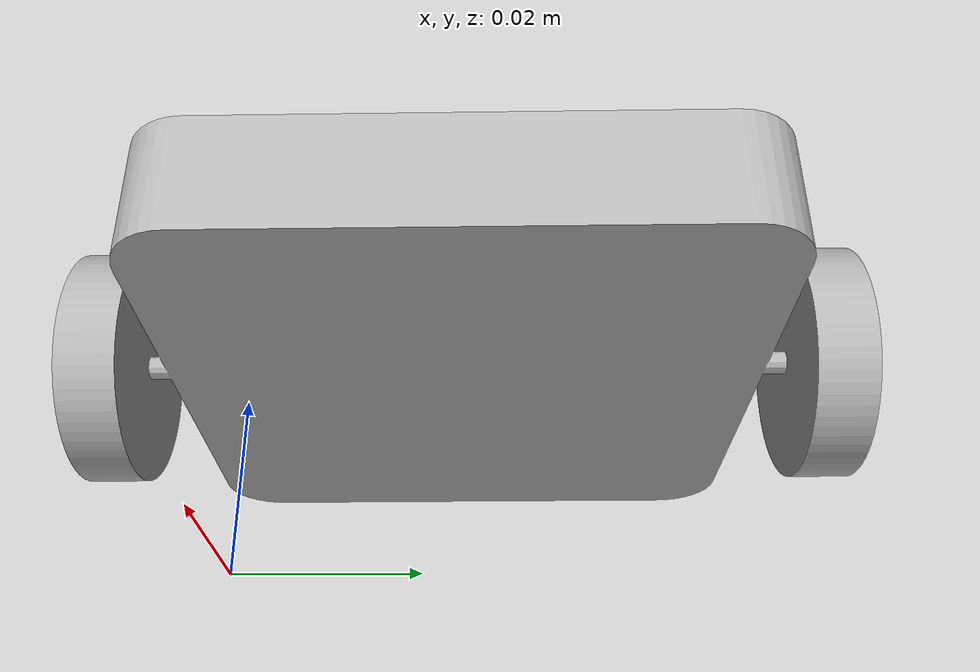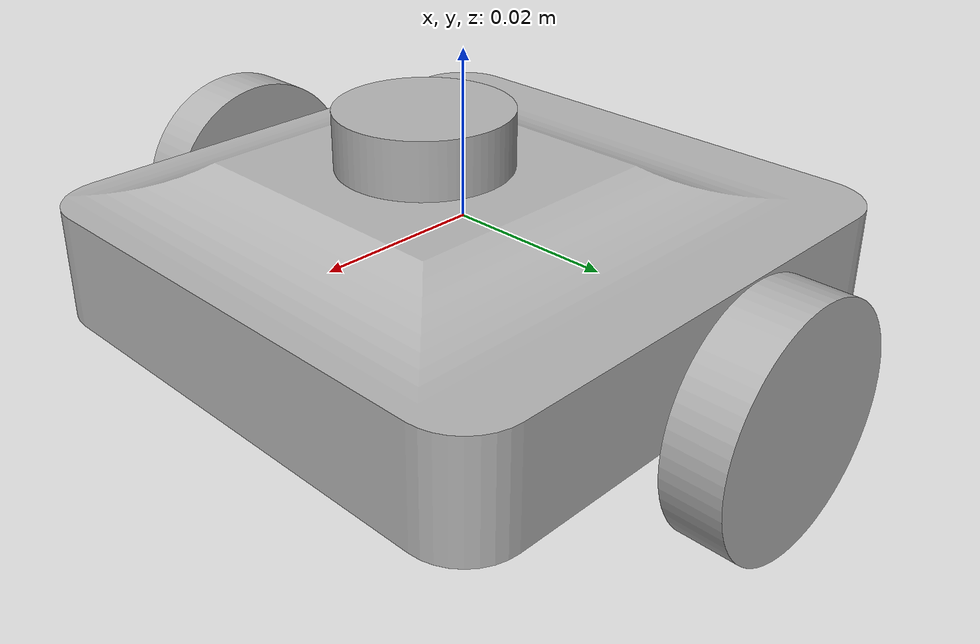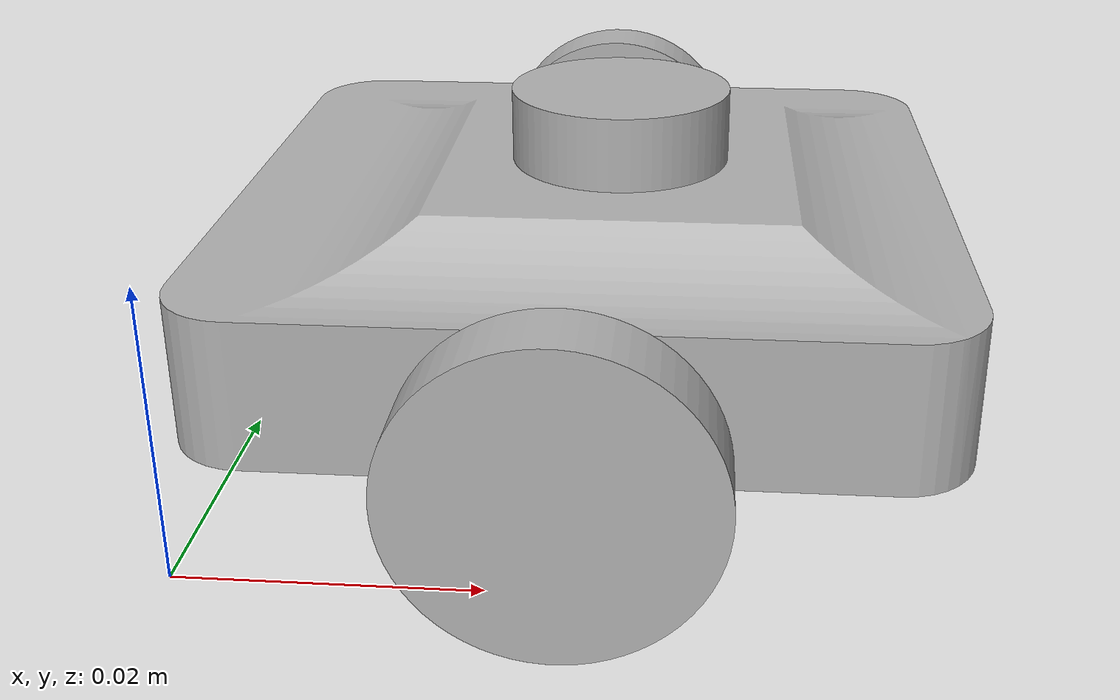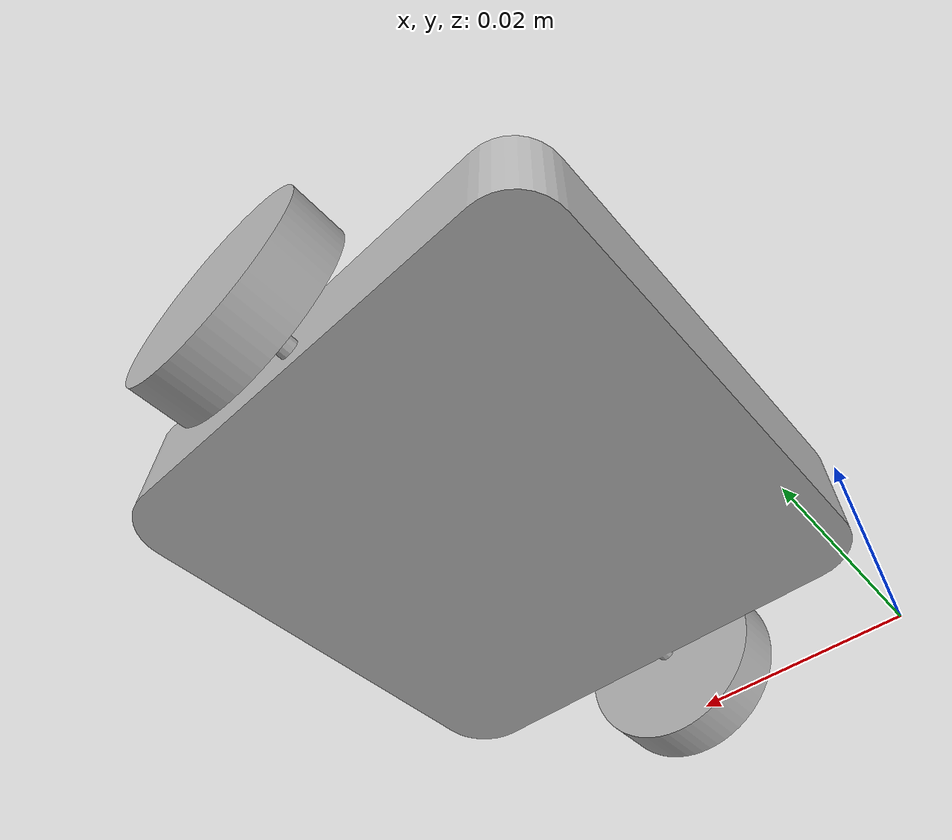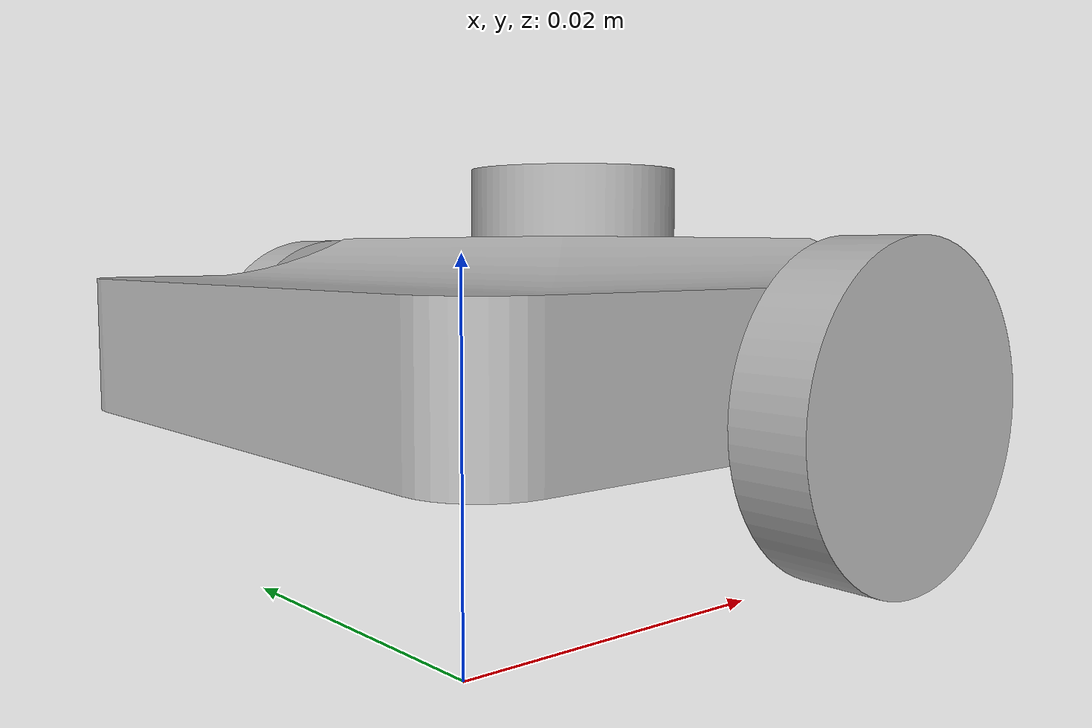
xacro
<?xml version="1.0" ?>
<robot name="r" xmlns:xacro="http://www.ros.org/wiki/xacro">

<xacro:include filename="$(find r_description)/urdf/materials.xacro" />
<xacro:include filename="$(find r_description)/urdf/r.trans" />
<xacro:include filename="$(find r_description)/urdf/r.gazebo" />
<link name="base_link">
  <inertial>
    <origin rpy="0 0 0" xyz="0.025204031061930598 0.024744961256997555 0.01363725630181482"/>
    <mass value="0.21683375104453578"/>
    <inertia ixx="4.5e-05" ixy="0.0" ixz="-0.0" iyy="4.4e-05" iyz="0.0" izz="8.4e-05"/>
  </inertial>
  <visual>
    <origin rpy="0 0 0" xyz="0 0 0"/>
    <geometry>
      <mesh filename="package://r_description/meshes/base_link.stl" scale="0.001 0.001 0.001"/>
    </geometry>
    <material name="silver"/>
  </visual>
  <collision>
    <origin rpy="0 0 0" xyz="0 0 0"/>
    <geometry>
      <mesh filename="package://r_description/meshes/base_link.stl" scale="0.001 0.001 0.001"/>
    </geometry>
  </collision>
</link>

<link name="l_wheel_1">
  <inertial>
    <origin rpy="0 0 0" xyz="3.7252905621398824e-10 0.002500000000000009 4.470351346042012e-11"/>
    <mass value="0.012330751165339939"/>
    <inertia ixx="0.0" ixy="0.0" ixz="0.0" iyy="1e-06" iyz="-0.0" izz="0.0"/>
  </inertial>
  <visual>
    <origin rpy="0 0 0" xyz="-0.025 -0.053 -0.011"/>
    <geometry>
      <mesh filename="package://r_description/meshes/l_wheel_1.stl" scale="0.001 0.001 0.001"/>
    </geometry>
    <material name="silver"/>
  </visual>
  <collision>
    <origin rpy="0 0 0" xyz="-0.025 -0.053 -0.011"/>
    <geometry>
      <mesh filename="package://r_description/meshes/l_wheel_1.stl" scale="0.001 0.001 0.001"/>
    </geometry>
  </collision>
</link>

<link name="r_wheel_1">
  <inertial>
    <origin rpy="0 0 0" xyz="3.7252901111117787e-10 -0.002500000000000004 4.470347529650365e-11"/>
    <mass value="0.012330751165339939"/>
    <inertia ixx="0.0" ixy="0.0" ixz="-0.0" iyy="1e-06" iyz="-0.0" izz="0.0"/>
  </inertial>
  <visual>
    <origin rpy="0 0 0" xyz="-0.025 0.003 -0.011"/>
    <geometry>
      <mesh filename="package://r_description/meshes/r_wheel_1.stl" scale="0.001 0.001 0.001"/>
    </geometry>
    <material name="silver"/>
  </visual>
  <collision>
    <origin rpy="0 0 0" xyz="-0.025 0.003 -0.011"/>
    <geometry>
      <mesh filename="package://r_description/meshes/r_wheel_1.stl" scale="0.001 0.001 0.001"/>
    </geometry>
  </collision>
</link>

<link name="lidar_1">
  <inertial>
    <origin rpy="0 0 0" xyz="4.023174154932363e-10 3.352906459419547e-10 0.0024999999999999988"/>
    <mass value="0.006936047530503717"/>
    <inertia ixx="0.0" ixy="0.0" ixz="-0.0" iyy="0.0" iyz="0.0" izz="0.0"/>
  </inertial>
  <visual>
    <origin rpy="0 0 0" xyz="-0.027 -0.0225 -0.021"/>
    <geometry>
      <mesh filename="package://r_description/meshes/lidar_1.stl" scale="0.001 0.001 0.001"/>
    </geometry>
    <material name="silver"/>
  </visual>
  <collision>
    <origin rpy="0 0 0" xyz="-0.027 -0.0225 -0.021"/>
    <geometry>
      <mesh filename="package://r_description/meshes/lidar_1.stl" scale="0.001 0.001 0.001"/>
    </geometry>
  </collision>
</link>

<joint name="Rev1" type="continuous">
  <origin rpy="0 0 0" xyz="0.025 0.053 0.011"/>
  <parent link="base_link"/>
  <child link="l_wheel_1"/>
  <axis xyz="0.0 1.0 -0.0"/>
</joint>

<joint name="Rev2" type="continuous">
  <origin rpy="0 0 0" xyz="0.025 -0.003 0.011"/>
  <parent link="base_link"/>
  <child link="r_wheel_1"/>
  <axis xyz="0.0 -1.0 -0.0"/>
</joint>

<joint name="Rev3" type="continuous">
  <origin rpy="0 0 0" xyz="0.027 0.0225 0.021"/>
  <parent link="base_link"/>
  <child link="lidar_1"/>
  <axis xyz="0.0 0.0 1.0"/>
</joint>

</robot>

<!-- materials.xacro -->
<robot name="r" xmlns:xacro="http://www.ros.org/wiki/xacro" >

<material name="silver">
  <color rgba="0.700 0.700 0.700 1.000"/>
</material>

</robot>

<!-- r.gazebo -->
<robot name="r" xmlns:xacro="http://www.ros.org/wiki/xacro" >

<xacro:property name="body_color" value="Gazebo/Silver" />

<gazebo>
  <plugin filename="libgazebo_ros_control.so" name="control"/>
</gazebo>
<gazebo reference="base_link">
  <material>${body_color}</material>
  <mu1>0.2</mu1>
  <mu2>0.2</mu2>
  <selfCollide>true</selfCollide>
  <gravity>true</gravity>
</gazebo>

<gazebo reference="l_wheel_1">
  <material>${body_color}</material>
  <mu1>0.2</mu1>
  <mu2>0.2</mu2>
  <selfCollide>true</selfCollide>
</gazebo>

<gazebo reference="r_wheel_1">
  <material>${body_color}</material>
  <mu1>0.2</mu1>
  <mu2>0.2</mu2>
  <selfCollide>true</selfCollide>
</gazebo>

<gazebo reference="lidar_1">
  <material>${body_color}</material>
  <mu1>0.2</mu1>
  <mu2>0.2</mu2>
  <selfCollide>true</selfCollide>
</gazebo>

</robot>
